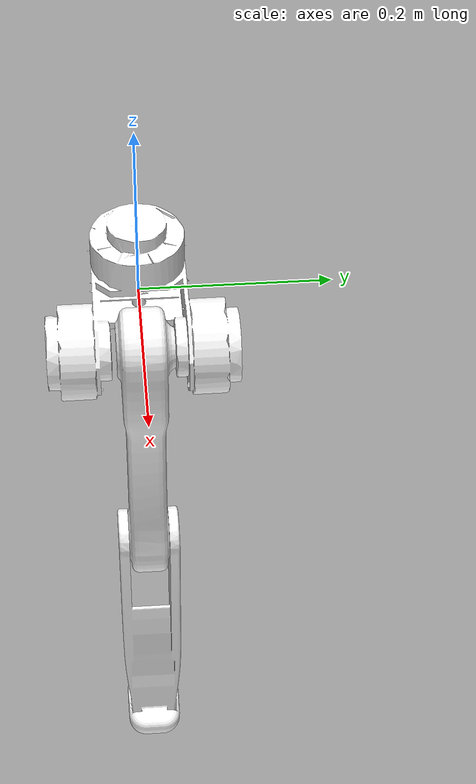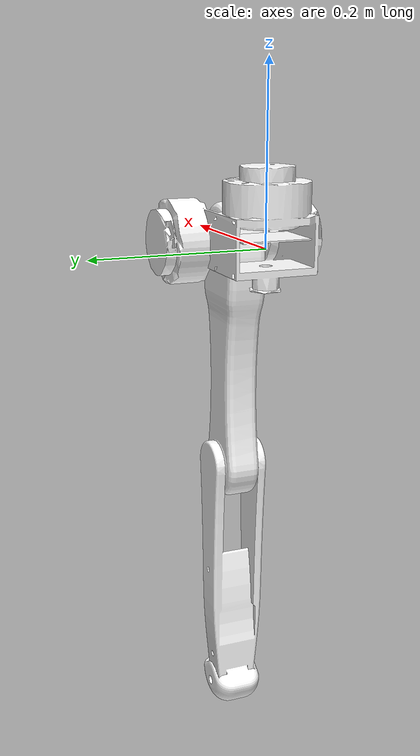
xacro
<?xml version="1.0" ?>
<robot name="moonbot01" xmlns:xacro="http://ros.org/wiki/xacro">

  <!-- include files -->
  <xacro:include filename="$(find moonbot_description)/urdf/yonaka_0722/materials.xacro"/>
  <xacro:include filename="$(find moonbot_description)/urdf/yonaka_0722/moonbot01_leg_macro.xacro"/>

  <link name="world"/>

  <joint name="world_to_f_left_base" type="fixed">
    <origin xyz="0 0 0" rpy="0 0 0"/>
    <parent link="world"/>
    <child link="f_left_leg_base_link"/>
  </joint>

  <xacro:moonbot01_leg prefix="f_left_"/>

  <joint name="world_to_f_right_base" type="fixed">
    <origin xyz="0 0 0" rpy="0 0 0"/>
    <parent link="world"/>
    <child link="f_right_leg_base_link"/>
  </joint>

  <xacro:moonbot01_leg prefix="f_right_"/>

  <joint name="world_to_b_left_base" type="fixed">
    <origin xyz="0 0 0" rpy="0 0 0"/>
    <parent link="world"/>
    <child link="b_left_leg_base_link"/>
  </joint>

  <xacro:moonbot01_leg prefix="b_left_"/>

  <joint name="world_to_b_right_base" type="fixed">
    <origin xyz="0 0 0" rpy="0 0 0"/>
    <parent link="world"/>
    <child link="b_right_leg_base_link"/>
  </joint>

  <xacro:moonbot01_leg prefix="b_right_"/>

</robot>

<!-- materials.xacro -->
<robot name="moonbot01" xmlns:xacro="http://ros.org/wiki/xacro">

  <!-- link rviz colors -->
  <material name="White">
    <color rgba="1 1 1 1"/>
  </material>

  <material name="Black">
    <color rgba="0 0 0 1"/>
  </material>

</robot>

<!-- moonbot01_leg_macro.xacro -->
<robot name="moonbot01" xmlns:xacro="http://ros.org/wiki/xacro">

  <xacro:macro name="moonbot01_leg" params="prefix">

    <!-- include files -->
    <xacro:include filename="$(find moonbot_description)/urdf/yonaka_0722/constant.xacro" />
    <xacro:include filename="$(find moonbot_description)/urdf/yonaka_0722/common.xacro" />

    <!-- base link -->
    <link name="${prefix}leg_base_link">
      <inertial>
        <mass value="0.001"/>
        <inertia ixx="0.000000" ixy="0.000000" ixz="0.000000" iyy="0.000000" iyz="0.000000" izz="0.000000"/>
      </inertial>
    </link>

    <!-- joint 1 -->
    <joint name="${prefix}leg_joint1" type="revolute">
      <axis xyz="0 0 1" rpy="0 0 0"/>
      <limit effort="1000.0" lower="${j1_lower_limit}" upper="${j1_upper_limit}" velocity="${j1_velocity_limit}"/>
      <origin xyz="0 0.0 0.0" rpy="0 0 0"/>
      <parent link="${prefix}leg_base_link"/>
      <child link="${prefix}leg_link1"/>
    </joint>
    <!-- link 1 -->
    <xacro:link name="${prefix}leg_link1" material="White" mesh="M_Assy1.STL" mass="3.550" ixx="0.1" ixy="0.1" ixz="0.1" iyy="0.1" iyz="0.1" izz="0.1"/>

    <!-- joint 2 -->
    <joint name="${prefix}leg_joint2" type="revolute">
      <axis xyz="0 1 0" rpy="0 0 0"/>
      <limit effort="1000.0" lower="${j2_lower_limit}" upper="${j2_upper_limit}" velocity="${j2_velocity_limit}"/>
      <origin xyz="0.09 0.0 -0.0" rpy="0 0 0"/>
      <parent link="${prefix}leg_link1"/>
      <child link="${prefix}leg_link2"/>
    </joint>

    <!-- link 2 -->
    <xacro:link name="${prefix}leg_link2" material="White" mesh="M_Assy2.STL" mass="0.990" ixx="0.1" ixy="0.1" ixz="0.1" iyy="0.1" iyz="0.1" izz="0.1"/>

    <!-- joint 3 -->
    <joint name="${prefix}leg_joint3" type="revolute">
      <axis xyz="0 1 0" rpy="0 0 0"/>
      <limit effort="1000.0" lower="${j3_lower_limit}" upper="${j3_upper_limit}" velocity="${j3_velocity_limit}"/>
      <origin xyz="0.0 0 -0.28" rpy="0 0 0"/>
      <parent link="${prefix}leg_link2"/>
      <child link="${prefix}leg_link3"/>
    </joint>

    <!-- link 3 -->
    <xacro:link name="${prefix}leg_link3" material="White" mesh="M_Assy3.STL" mass="0.430" ixx="0.1" ixy="0.1" ixz="0.1" iyy="0.1" iyz="0.1" izz="0.1"/>

  </xacro:macro>

</robot>

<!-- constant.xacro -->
<robot xmlns:xacro="http://www.ros.org/wiki/xacro">

    <!-- Constants for robot dimensions -->
    <xacro:property name="PI" value="3.1415926535897931"/>

    <!-- Arm -->
    <xacro:property name="aj1_lower_limit" value="${radians( -15)}"/>
    <xacro:property name="aj1_upper_limit" value="${radians( 180)}"/>
    <xacro:property name="aj2_lower_limit" value="${radians(-150)}"/>
    <xacro:property name="aj2_upper_limit" value="${radians( 150)}"/>
    <xacro:property name="aj3_lower_limit" value="${radians(-150)}"/>
    <xacro:property name="aj3_upper_limit" value="${radians( 150)}"/>
    <xacro:property name="aj4_lower_limit" value="${radians(-360)}"/>
    <xacro:property name="aj4_upper_limit" value="${radians( 360)}"/>
    <xacro:property name="aj5_lower_limit" value="${radians(-30)}"/>
    <xacro:property name="aj5_upper_limit" value="${radians( 30)}"/>
    <xacro:property name="aj6_lower_limit" value="${radians(-90)}"/>
    <xacro:property name="aj6_upper_limit" value="${radians( 90)}"/>

    <xacro:property name="aj1_velocity_limit" value="${radians(30)}"/>
    <xacro:property name="aj2_velocity_limit" value="${radians(30)}"/>
    <xacro:property name="aj3_velocity_limit" value="${radians(30)}"/>
    <xacro:property name="aj4_velocity_limit" value="${radians(30)}"/>
    <xacro:property name="aj5_velocity_limit" value="${radians(30)}"/>
    <xacro:property name="aj6_velocity_limit" value="${radians(30)}"/>

    <xacro:property name="atorque_min" value="-1000.0"/>
    <xacro:property name="atorque_max" value="1000.0"/>

    <xacro:property name="aj1_init_pose" value="${PI}"/>
    <xacro:property name="aj2_init_pose" value="1.047"/>
    <xacro:property name="aj3_init_pose" value="-2.356"/>
    <xacro:property name="aj4_init_pose" value="${PI}"/>
    <xacro:property name="aj5_init_pose" value="0.0"/>
    <xacro:property name="aj6_init_pose" value="0.0"/>

    <!-- Leg -->
    <xacro:property name="j1_lower_limit" value="${radians( -90)}"/>
    <xacro:property name="j1_upper_limit" value="${radians(  90)}"/>
    <xacro:property name="j2_lower_limit" value="${radians(-150)}"/>
    <xacro:property name="j2_upper_limit" value="${radians(  10)}"/>
    <xacro:property name="j3_lower_limit" value="${radians(-160)}"/>
    <xacro:property name="j3_upper_limit" value="${radians( 120)}"/>

    <xacro:property name="j1_velocity_limit" value="${radians(180)}"/>
    <xacro:property name="j2_velocity_limit" value="${radians(180)}"/>
    <xacro:property name="j3_velocity_limit" value="${radians(180)}"/>

    <xacro:property name="torque_min" value="-10000.0"/>
    <xacro:property name="torque_max" value="10000.0"/>

    <xacro:property name="j1_init_pose" value="0.0"/>
    <xacro:property name="j2_init_pose" value="-0.96"/>
    <xacro:property name="j3_init_pose" value="1.017"/>

    <!-- foot -->

</robot>

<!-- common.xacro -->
<robot name="moonbot01" xmlns:xacro="http://ros.org/wiki/xacro">

  <xacro:macro name="link" params="name material mesh mass ixx ixy ixz iyy iyz izz xyz:='0 0 0' rpy:='0 0 0'">
    <link name="${name}">
      <visual>
        <origin xyz="${xyz}" rpy="${rpy}"/>
        <material name="${material}"/>
        <geometry>
          <mesh filename="package://moonbot_description/meshesY/${mesh}" scale="0.001 0.001 0.001"/>
        </geometry>
      </visual>
      <collision>
        <origin xyz="${xyz}" rpy="${rpy}"/>
        <geometry>
          <mesh filename="package://moonbot_description/meshesY/${mesh}" scale="0.001 0.001 0.001"/>
        </geometry>
      </collision>
      <inertial>
        <origin xyz="${xyz}" rpy="${rpy}"/>
        <mass value="${mass}"/>
        <inertia ixx="${ixx}" ixy="${ixy}" ixz="${ixz}" iyy="${iyy}" iyz="${iyz}" izz="${izz}"/>
      </inertial>
    </link>
  </xacro:macro>

</robot>
